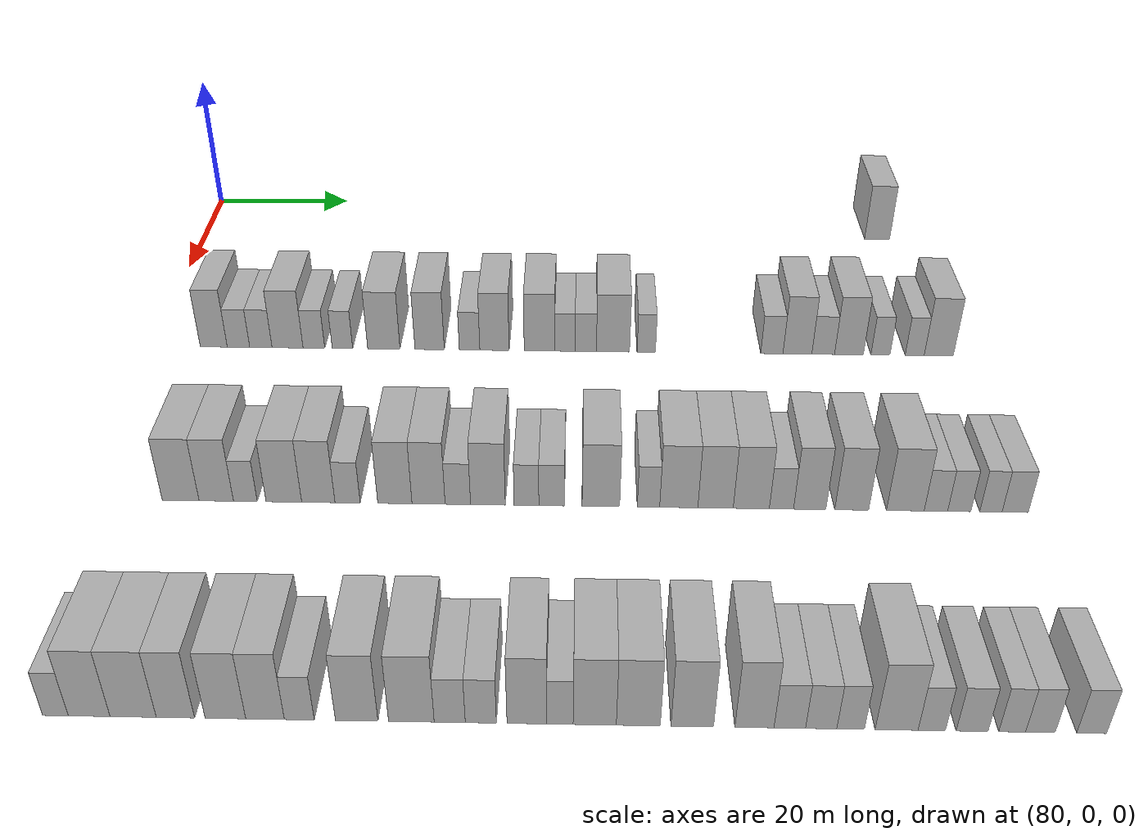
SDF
<sdf version="1.6">
 <world name="default">
  <model name="building_582">
   <static>1</static>
   <pose>85.0000 101.9028 0 0.000000 0.000000 0.000000</pose>
   <link name="link">
    <pose>0 0 4.50 0 0 0</pose>
    <collision name="collision"><geometry><box><size>10.0000 3.7658 9.0000</size></box></geometry></collision>
    <visual name="visual">
     <cast_shadows>0</cast_shadows>
     <geometry><box><size>10.0000 3.7658 9.0000</size></box></geometry>
     <material>
      <script>
       <uri>model://HANNAS_wall/materials/scripts</uri>
       <uri>model://HANNAS_wall/materials/textures</uri>
       <name>vrc/HANNAS_wall</name>
      </script>
     </material>
    </visual>
   </link>
  </model>
  <model name="building_786">
   <static>1</static>
   <pose>115.0000 8.3371 0 0.000000 0.000000 0.000000</pose>
   <link name="link">
    <pose>0 0 4.50 0 0 0</pose>
    <collision name="collision"><geometry><box><size>10.0000 3.6056 9.0000</size></box></geometry></collision>
    <visual name="visual">
     <cast_shadows>0</cast_shadows>
     <geometry><box><size>10.0000 3.6056 9.0000</size></box></geometry>
     <material>
      <script>
       <uri>model://HANNAS_wall/materials/scripts</uri>
       <uri>model://HANNAS_wall/materials/textures</uri>
       <name>vrc/HANNAS_wall</name>
      </script>
     </material>
    </visual>
   </link>
  </model>
  <model name="building_787">
   <static>1</static>
   <pose>115.0000 11.6390 0 0.000000 0.000000 0.000000</pose>
   <link name="link">
    <pose>0 0 3.00 0 0 0</pose>
    <collision name="collision"><geometry><box><size>10.0000 2.9984 6.0000</size></box></geometry></collision>
    <visual name="visual">
     <cast_shadows>0</cast_shadows>
     <geometry><box><size>10.0000 2.9984 6.0000</size></box></geometry>
     <material>
      <script>
       <uri>model://HANNAS_wall/materials/scripts</uri>
       <uri>model://HANNAS_wall/materials/textures</uri>
       <name>vrc/HANNAS_wall</name>
      </script>
     </material>
    </visual>
   </link>
  </model>
  <model name="building_788">
   <static>1</static>
   <pose>115.0000 14.6338 0 0.000000 0.000000 0.000000</pose>
   <link name="link">
    <pose>0 0 3.00 0 0 0</pose>
    <collision name="collision"><geometry><box><size>10.0000 2.9912 6.0000</size></box></geometry></collision>
    <visual name="visual">
     <cast_shadows>0</cast_shadows>
     <geometry><box><size>10.0000 2.9912 6.0000</size></box></geometry>
     <material>
      <script>
       <uri>model://HANNAS_wall/materials/scripts</uri>
       <uri>model://HANNAS_wall/materials/textures</uri>
       <name>vrc/HANNAS_wall</name>
      </script>
     </material>
    </visual>
   </link>
  </model>
  <model name="building_789">
   <static>1</static>
   <pose>115.0000 18.2004 0 0.000000 0.000000 0.000000</pose>
   <link name="link">
    <pose>0 0 4.50 0 0 0</pose>
    <collision name="collision"><geometry><box><size>10.0000 4.1419 9.0000</size></box></geometry></collision>
    <visual name="visual">
     <cast_shadows>0</cast_shadows>
     <geometry><box><size>10.0000 4.1419 9.0000</size></box></geometry>
     <material>
      <script>
       <uri>model://HANNAS_wall/materials/scripts</uri>
       <uri>model://HANNAS_wall/materials/textures</uri>
       <name>vrc/HANNAS_wall</name>
      </script>
     </material>
    </visual>
   </link>
  </model>
  <model name="building_790">
   <static>1</static>
   <pose>115.0000 21.7192 0 0.000000 0.000000 0.000000</pose>
   <link name="link">
    <pose>0 0 3.00 0 0 0</pose>
    <collision name="collision"><geometry><box><size>10.0000 2.8958 6.0000</size></box></geometry></collision>
    <visual name="visual">
     <cast_shadows>0</cast_shadows>
     <geometry><box><size>10.0000 2.8958 6.0000</size></box></geometry>
     <material>
      <script>
       <uri>model://HANNAS_wall/materials/scripts</uri>
       <uri>model://HANNAS_wall/materials/textures</uri>
       <name>vrc/HANNAS_wall</name>
      </script>
     </material>
    </visual>
   </link>
  </model>
  <model name="building_791">
   <static>1</static>
   <pose>115.0000 25.5296 0 0.000000 0.000000 0.000000</pose>
   <link name="link">
    <pose>0 0 3.00 0 0 0</pose>
    <collision name="collision"><geometry><box><size>10.0000 2.7250 6.0000</size></box></geometry></collision>
    <visual name="visual">
     <cast_shadows>0</cast_shadows>
     <geometry><box><size>10.0000 2.7250 6.0000</size></box></geometry>
     <material>
      <script>
       <uri>model://HANNAS_wall/materials/scripts</uri>
       <uri>model://HANNAS_wall/materials/textures</uri>
       <name>vrc/HANNAS_wall</name>
      </script>
     </material>
    </visual>
   </link>
  </model>
  <model name="building_792">
   <static>1</static>
   <pose>115.0000 31.0427 0 0.000000 0.000000 0.000000</pose>
   <link name="link">
    <pose>0 0 4.50 0 0 0</pose>
    <collision name="collision"><geometry><box><size>10.0000 4.3012 9.0000</size></box></geometry></collision>
    <visual name="visual">
     <cast_shadows>0</cast_shadows>
     <geometry><box><size>10.0000 4.3012 9.0000</size></box></geometry>
     <material>
      <script>
       <uri>model://HANNAS_wall/materials/scripts</uri>
       <uri>model://HANNAS_wall/materials/textures</uri>
       <name>vrc/HANNAS_wall</name>
      </script>
     </material>
    </visual>
   </link>
  </model>
  <model name="building_793">
   <static>1</static>
   <pose>115.0000 37.1422 0 0.000000 0.000000 0.000000</pose>
   <link name="link">
    <pose>0 0 4.50 0 0 0</pose>
    <collision name="collision"><geometry><box><size>10.0000 3.8977 9.0000</size></box></geometry></collision>
    <visual name="visual">
     <cast_shadows>0</cast_shadows>
     <geometry><box><size>10.0000 3.8977 9.0000</size></box></geometry>
     <material>
      <script>
       <uri>model://HANNAS_wall/materials/scripts</uri>
       <uri>model://HANNAS_wall/materials/textures</uri>
       <name>vrc/HANNAS_wall</name>
      </script>
     </material>
    </visual>
   </link>
  </model>
  <model name="building_794">
   <static>1</static>
   <pose>115.0000 42.4540 0 0.000000 0.000000 0.000000</pose>
   <link name="link">
    <pose>0 0 3.00 0 0 0</pose>
    <collision name="collision"><geometry><box><size>10.0000 2.7260 6.0000</size></box></geometry></collision>
    <visual name="visual">
     <cast_shadows>0</cast_shadows>
     <geometry><box><size>10.0000 2.7260 6.0000</size></box></geometry>
     <material>
      <script>
       <uri>model://HANNAS_wall/materials/scripts</uri>
       <uri>model://HANNAS_wall/materials/textures</uri>
       <name>vrc/HANNAS_wall</name>
      </script>
     </material>
    </visual>
   </link>
  </model>
  <model name="building_795">
   <static>1</static>
   <pose>115.0000 45.7626 0 0.000000 0.000000 0.000000</pose>
   <link name="link">
    <pose>0 0 4.50 0 0 0</pose>
    <collision name="collision"><geometry><box><size>10.0000 3.8911 9.0000</size></box></geometry></collision>
    <visual name="visual">
     <cast_shadows>0</cast_shadows>
     <geometry><box><size>10.0000 3.8911 9.0000</size></box></geometry>
     <material>
      <script>
       <uri>model://HANNAS_wall/materials/scripts</uri>
       <uri>model://HANNAS_wall/materials/textures</uri>
       <name>vrc/HANNAS_wall</name>
      </script>
     </material>
    </visual>
   </link>
  </model>
  <model name="building_796">
   <static>1</static>
   <pose>115.0000 51.7345 0 0.000000 0.000000 0.000000</pose>
   <link name="link">
    <pose>0 0 4.50 0 0 0</pose>
    <collision name="collision"><geometry><box><size>10.0000 4.0527 9.0000</size></box></geometry></collision>
    <visual name="visual">
     <cast_shadows>0</cast_shadows>
     <geometry><box><size>10.0000 4.0527 9.0000</size></box></geometry>
     <material>
      <script>
       <uri>model://HANNAS_wall/materials/scripts</uri>
       <uri>model://HANNAS_wall/materials/textures</uri>
       <name>vrc/HANNAS_wall</name>
      </script>
     </material>
    </visual>
   </link>
  </model>
  <model name="building_797">
   <static>1</static>
   <pose>115.0000 55.1009 0 0.000000 0.000000 0.000000</pose>
   <link name="link">
    <pose>0 0 3.00 0 0 0</pose>
    <collision name="collision"><geometry><box><size>10.0000 2.6801 6.0000</size></box></geometry></collision>
    <visual name="visual">
     <cast_shadows>0</cast_shadows>
     <geometry><box><size>10.0000 2.6801 6.0000</size></box></geometry>
     <material>
      <script>
       <uri>model://HANNAS_wall/materials/scripts</uri>
       <uri>model://HANNAS_wall/materials/textures</uri>
       <name>vrc/HANNAS_wall</name>
      </script>
     </material>
    </visual>
   </link>
  </model>
  <model name="building_798">
   <static>1</static>
   <pose>115.0000 57.8525 0 0.000000 0.000000 0.000000</pose>
   <link name="link">
    <pose>0 0 3.00 0 0 0</pose>
    <collision name="collision"><geometry><box><size>10.0000 2.8230 6.0000</size></box></geometry></collision>
    <visual name="visual">
     <cast_shadows>0</cast_shadows>
     <geometry><box><size>10.0000 2.8230 6.0000</size></box></geometry>
     <material>
      <script>
       <uri>model://HANNAS_wall/materials/scripts</uri>
       <uri>model://HANNAS_wall/materials/textures</uri>
       <name>vrc/HANNAS_wall</name>
      </script>
     </material>
    </visual>
   </link>
  </model>
  <model name="building_799">
   <static>1</static>
   <pose>115.0000 61.4612 0 0.000000 0.000000 0.000000</pose>
   <link name="link">
    <pose>0 0 4.50 0 0 0</pose>
    <collision name="collision"><geometry><box><size>10.0000 4.3944 9.0000</size></box></geometry></collision>
    <visual name="visual">
     <cast_shadows>0</cast_shadows>
     <geometry><box><size>10.0000 4.3944 9.0000</size></box></geometry>
     <material>
      <script>
       <uri>model://HANNAS_wall/materials/scripts</uri>
       <uri>model://HANNAS_wall/materials/textures</uri>
       <name>vrc/HANNAS_wall</name>
      </script>
     </material>
    </visual>
   </link>
  </model>
  <model name="building_800">
   <static>1</static>
   <pose>115.0000 65.8676 0 0.000000 0.000000 0.000000</pose>
   <link name="link">
    <pose>0 0 3.00 0 0 0</pose>
    <collision name="collision"><geometry><box><size>10.0000 2.4184 6.0000</size></box></geometry></collision>
    <visual name="visual">
     <cast_shadows>0</cast_shadows>
     <geometry><box><size>10.0000 2.4184 6.0000</size></box></geometry>
     <material>
      <script>
       <uri>model://HANNAS_wall/materials/scripts</uri>
       <uri>model://HANNAS_wall/materials/textures</uri>
       <name>vrc/HANNAS_wall</name>
      </script>
     </material>
    </visual>
   </link>
  </model>
  <model name="building_801">
   <static>1</static>
   <pose>115.0000 82.4691 0 0.000000 0.000000 0.000000</pose>
   <link name="link">
    <pose>0 0 3.00 0 0 0</pose>
    <collision name="collision"><geometry><box><size>10.0000 2.9282 6.0000</size></box></geometry></collision>
    <visual name="visual">
     <cast_shadows>0</cast_shadows>
     <geometry><box><size>10.0000 2.9282 6.0000</size></box></geometry>
     <material>
      <script>
       <uri>model://HANNAS_wall/materials/scripts</uri>
       <uri>model://HANNAS_wall/materials/textures</uri>
       <name>vrc/HANNAS_wall</name>
      </script>
     </material>
    </visual>
   </link>
  </model>
  <model name="building_802">
   <static>1</static>
   <pose>115.0000 85.8316 0 0.000000 0.000000 0.000000</pose>
   <link name="link">
    <pose>0 0 4.50 0 0 0</pose>
    <collision name="collision"><geometry><box><size>10.0000 3.7968 9.0000</size></box></geometry></collision>
    <visual name="visual">
     <cast_shadows>0</cast_shadows>
     <geometry><box><size>10.0000 3.7968 9.0000</size></box></geometry>
     <material>
      <script>
       <uri>model://HANNAS_wall/materials/scripts</uri>
       <uri>model://HANNAS_wall/materials/textures</uri>
       <name>vrc/HANNAS_wall</name>
      </script>
     </material>
    </visual>
   </link>
  </model>
  <model name="building_803">
   <static>1</static>
   <pose>115.0000 89.2266 0 0.000000 0.000000 0.000000</pose>
   <link name="link">
    <pose>0 0 3.00 0 0 0</pose>
    <collision name="collision"><geometry><box><size>10.0000 2.9931 6.0000</size></box></geometry></collision>
    <visual name="visual">
     <cast_shadows>0</cast_shadows>
     <geometry><box><size>10.0000 2.9931 6.0000</size></box></geometry>
     <material>
      <script>
       <uri>model://HANNAS_wall/materials/scripts</uri>
       <uri>model://HANNAS_wall/materials/textures</uri>
       <name>vrc/HANNAS_wall</name>
      </script>
     </material>
    </visual>
   </link>
  </model>
  <model name="building_804">
   <static>1</static>
   <pose>115.0000 92.6166 0 0.000000 0.000000 0.000000</pose>
   <link name="link">
    <pose>0 0 4.50 0 0 0</pose>
    <collision name="collision"><geometry><box><size>10.0000 3.7870 9.0000</size></box></geometry></collision>
    <visual name="visual">
     <cast_shadows>0</cast_shadows>
     <geometry><box><size>10.0000 3.7870 9.0000</size></box></geometry>
     <material>
      <script>
       <uri>model://HANNAS_wall/materials/scripts</uri>
       <uri>model://HANNAS_wall/materials/textures</uri>
       <name>vrc/HANNAS_wall</name>
      </script>
     </material>
    </visual>
   </link>
  </model>
  <model name="building_805">
   <static>1</static>
   <pose>115.0000 96.7622 0 0.000000 0.000000 0.000000</pose>
   <link name="link">
    <pose>0 0 3.00 0 0 0</pose>
    <collision name="collision"><geometry><box><size>10.0000 2.5042 6.0000</size></box></geometry></collision>
    <visual name="visual">
     <cast_shadows>0</cast_shadows>
     <geometry><box><size>10.0000 2.5042 6.0000</size></box></geometry>
     <material>
      <script>
       <uri>model://HANNAS_wall/materials/scripts</uri>
       <uri>model://HANNAS_wall/materials/textures</uri>
       <name>vrc/HANNAS_wall</name>
      </script>
     </material>
    </visual>
   </link>
  </model>
  <model name="building_806">
   <static>1</static>
   <pose>115.0000 101.2662 0 0.000000 0.000000 0.000000</pose>
   <link name="link">
    <pose>0 0 3.00 0 0 0</pose>
    <collision name="collision"><geometry><box><size>10.0000 2.5036 6.0000</size></box></geometry></collision>
    <visual name="visual">
     <cast_shadows>0</cast_shadows>
     <geometry><box><size>10.0000 2.5036 6.0000</size></box></geometry>
     <material>
      <script>
       <uri>model://HANNAS_wall/materials/scripts</uri>
       <uri>model://HANNAS_wall/materials/textures</uri>
       <name>vrc/HANNAS_wall</name>
      </script>
     </material>
    </visual>
   </link>
  </model>
  <model name="building_807">
   <static>1</static>
   <pose>115.0000 104.4235 0 0.000000 0.000000 0.000000</pose>
   <link name="link">
    <pose>0 0 4.50 0 0 0</pose>
    <collision name="collision"><geometry><box><size>10.0000 3.8110 9.0000</size></box></geometry></collision>
    <visual name="visual">
     <cast_shadows>0</cast_shadows>
     <geometry><box><size>10.0000 3.8110 9.0000</size></box></geometry>
     <material>
      <script>
       <uri>model://HANNAS_wall/materials/scripts</uri>
       <uri>model://HANNAS_wall/materials/textures</uri>
       <name>vrc/HANNAS_wall</name>
      </script>
     </material>
    </visual>
   </link>
  </model>
  <model name="building_1008">
   <static>1</static>
   <pose>145.0000 11.7958 0 0.000000 0.000000 0.000000</pose>
   <link name="link">
    <pose>0 0 4.50 0 0 0</pose>
    <collision name="collision"><geometry><box><size>10.0000 4.2122 9.0000</size></box></geometry></collision>
    <visual name="visual">
     <cast_shadows>0</cast_shadows>
     <geometry><box><size>10.0000 4.2122 9.0000</size></box></geometry>
     <material>
      <script>
       <uri>model://HANNAS_wall/materials/scripts</uri>
       <uri>model://HANNAS_wall/materials/textures</uri>
       <name>vrc/HANNAS_wall</name>
      </script>
     </material>
    </visual>
   </link>
  </model>
  <model name="building_1009">
   <static>1</static>
   <pose>145.0000 15.8680 0 0.000000 0.000000 0.000000</pose>
   <link name="link">
    <pose>0 0 4.50 0 0 0</pose>
    <collision name="collision"><geometry><box><size>10.0000 3.9323 9.0000</size></box></geometry></collision>
    <visual name="visual">
     <cast_shadows>0</cast_shadows>
     <geometry><box><size>10.0000 3.9323 9.0000</size></box></geometry>
     <material>
      <script>
       <uri>model://HANNAS_wall/materials/scripts</uri>
       <uri>model://HANNAS_wall/materials/textures</uri>
       <name>vrc/HANNAS_wall</name>
      </script>
     </material>
    </visual>
   </link>
  </model>
  <model name="building_1010">
   <static>1</static>
   <pose>145.0000 19.1947 0 0.000000 0.000000 0.000000</pose>
   <link name="link">
    <pose>0 0 3.00 0 0 0</pose>
    <collision name="collision"><geometry><box><size>10.0000 2.7211 6.0000</size></box></geometry></collision>
    <visual name="visual">
     <cast_shadows>0</cast_shadows>
     <geometry><box><size>10.0000 2.7211 6.0000</size></box></geometry>
     <material>
      <script>
       <uri>model://HANNAS_wall/materials/scripts</uri>
       <uri>model://HANNAS_wall/materials/textures</uri>
       <name>vrc/HANNAS_wall</name>
      </script>
     </material>
    </visual>
   </link>
  </model>
  <model name="building_1011">
   <static>1</static>
   <pose>145.0000 23.5867 0 0.000000 0.000000 0.000000</pose>
   <link name="link">
    <pose>0 0 4.50 0 0 0</pose>
    <collision name="collision"><geometry><box><size>10.0000 4.0630 9.0000</size></box></geometry></collision>
    <visual name="visual">
     <cast_shadows>0</cast_shadows>
     <geometry><box><size>10.0000 4.0630 9.0000</size></box></geometry>
     <material>
      <script>
       <uri>model://HANNAS_wall/materials/scripts</uri>
       <uri>model://HANNAS_wall/materials/textures</uri>
       <name>vrc/HANNAS_wall</name>
      </script>
     </material>
    </visual>
   </link>
  </model>
  <model name="building_1012">
   <static>1</static>
   <pose>145.0000 27.5180 0 0.000000 0.000000 0.000000</pose>
   <link name="link">
    <pose>0 0 4.50 0 0 0</pose>
    <collision name="collision"><geometry><box><size>10.0000 3.7995 9.0000</size></box></geometry></collision>
    <visual name="visual">
     <cast_shadows>0</cast_shadows>
     <geometry><box><size>10.0000 3.7995 9.0000</size></box></geometry>
     <material>
      <script>
       <uri>model://HANNAS_wall/materials/scripts</uri>
       <uri>model://HANNAS_wall/materials/textures</uri>
       <name>vrc/HANNAS_wall</name>
      </script>
     </material>
    </visual>
   </link>
  </model>
  <model name="building_1013">
   <static>1</static>
   <pose>145.0000 30.8530 0 0.000000 0.000000 0.000000</pose>
   <link name="link">
    <pose>0 0 3.00 0 0 0</pose>
    <collision name="collision"><geometry><box><size>10.0000 2.8705 6.0000</size></box></geometry></collision>
    <visual name="visual">
     <cast_shadows>0</cast_shadows>
     <geometry><box><size>10.0000 2.8705 6.0000</size></box></geometry>
     <material>
      <script>
       <uri>model://HANNAS_wall/materials/scripts</uri>
       <uri>model://HANNAS_wall/materials/textures</uri>
       <name>vrc/HANNAS_wall</name>
      </script>
     </material>
    </visual>
   </link>
  </model>
  <model name="building_1014">
   <static>1</static>
   <pose>145.0000 36.2369 0 0.000000 0.000000 0.000000</pose>
   <link name="link">
    <pose>0 0 4.50 0 0 0</pose>
    <collision name="collision"><geometry><box><size>10.0000 3.8973 9.0000</size></box></geometry></collision>
    <visual name="visual">
     <cast_shadows>0</cast_shadows>
     <geometry><box><size>10.0000 3.8973 9.0000</size></box></geometry>
     <material>
      <script>
       <uri>model://HANNAS_wall/materials/scripts</uri>
       <uri>model://HANNAS_wall/materials/textures</uri>
       <name>vrc/HANNAS_wall</name>
      </script>
     </material>
    </visual>
   </link>
  </model>
  <model name="building_1015">
   <static>1</static>
   <pose>145.0000 40.0674 0 0.000000 0.000000 0.000000</pose>
   <link name="link">
    <pose>0 0 4.50 0 0 0</pose>
    <collision name="collision"><geometry><box><size>10.0000 3.7638 9.0000</size></box></geometry></collision>
    <visual name="visual">
     <cast_shadows>0</cast_shadows>
     <geometry><box><size>10.0000 3.7638 9.0000</size></box></geometry>
     <material>
      <script>
       <uri>model://HANNAS_wall/materials/scripts</uri>
       <uri>model://HANNAS_wall/materials/textures</uri>
       <name>vrc/HANNAS_wall</name>
      </script>
     </material>
    </visual>
   </link>
  </model>
  <model name="building_1016">
   <static>1</static>
   <pose>145.0000 43.3934 0 0.000000 0.000000 0.000000</pose>
   <link name="link">
    <pose>0 0 3.00 0 0 0</pose>
    <collision name="collision"><geometry><box><size>10.0000 2.8883 6.0000</size></box></geometry></collision>
    <visual name="visual">
     <cast_shadows>0</cast_shadows>
     <geometry><box><size>10.0000 2.8883 6.0000</size></box></geometry>
     <material>
      <script>
       <uri>model://HANNAS_wall/materials/scripts</uri>
       <uri>model://HANNAS_wall/materials/textures</uri>
       <name>vrc/HANNAS_wall</name>
      </script>
     </material>
    </visual>
   </link>
  </model>
  <model name="building_1017">
   <static>1</static>
   <pose>145.0000 46.8110 0 0.000000 0.000000 0.000000</pose>
   <link name="link">
    <pose>0 0 4.50 0 0 0</pose>
    <collision name="collision"><geometry><box><size>10.0000 3.9469 9.0000</size></box></geometry></collision>
    <visual name="visual">
     <cast_shadows>0</cast_shadows>
     <geometry><box><size>10.0000 3.9469 9.0000</size></box></geometry>
     <material>
      <script>
       <uri>model://HANNAS_wall/materials/scripts</uri>
       <uri>model://HANNAS_wall/materials/textures</uri>
       <name>vrc/HANNAS_wall</name>
      </script>
     </material>
    </visual>
   </link>
  </model>
  <model name="building_1018">
   <static>1</static>
   <pose>145.0000 51.1833 0 0.000000 0.000000 0.000000</pose>
   <link name="link">
    <pose>0 0 3.00 0 0 0</pose>
    <collision name="collision"><geometry><box><size>10.0000 2.7978 6.0000</size></box></geometry></collision>
    <visual name="visual">
     <cast_shadows>0</cast_shadows>
     <geometry><box><size>10.0000 2.7978 6.0000</size></box></geometry>
     <material>
      <script>
       <uri>model://HANNAS_wall/materials/scripts</uri>
       <uri>model://HANNAS_wall/materials/textures</uri>
       <name>vrc/HANNAS_wall</name>
      </script>
     </material>
    </visual>
   </link>
  </model>
  <model name="building_1019">
   <static>1</static>
   <pose>145.0000 54.0289 0 0.000000 0.000000 0.000000</pose>
   <link name="link">
    <pose>0 0 3.00 0 0 0</pose>
    <collision name="collision"><geometry><box><size>10.0000 2.8934 6.0000</size></box></geometry></collision>
    <visual name="visual">
     <cast_shadows>0</cast_shadows>
     <geometry><box><size>10.0000 2.8934 6.0000</size></box></geometry>
     <material>
      <script>
       <uri>model://HANNAS_wall/materials/scripts</uri>
       <uri>model://HANNAS_wall/materials/textures</uri>
       <name>vrc/HANNAS_wall</name>
      </script>
     </material>
    </visual>
   </link>
  </model>
  <model name="building_1020">
   <static>1</static>
   <pose>145.0000 59.5996 0 0.000000 0.000000 0.000000</pose>
   <link name="link">
    <pose>0 0 4.50 0 0 0</pose>
    <collision name="collision"><geometry><box><size>10.0000 4.2478 9.0000</size></box></geometry></collision>
    <visual name="visual">
     <cast_shadows>0</cast_shadows>
     <geometry><box><size>10.0000 4.2478 9.0000</size></box></geometry>
     <material>
      <script>
       <uri>model://HANNAS_wall/materials/scripts</uri>
       <uri>model://HANNAS_wall/materials/textures</uri>
       <name>vrc/HANNAS_wall</name>
      </script>
     </material>
    </visual>
   </link>
  </model>
  <model name="building_1021">
   <static>1</static>
   <pose>145.0000 64.9868 0 0.000000 0.000000 0.000000</pose>
   <link name="link">
    <pose>0 0 3.00 0 0 0</pose>
    <collision name="collision"><geometry><box><size>10.0000 2.5267 6.0000</size></box></geometry></collision>
    <visual name="visual">
     <cast_shadows>0</cast_shadows>
     <geometry><box><size>10.0000 2.5267 6.0000</size></box></geometry>
     <material>
      <script>
       <uri>model://HANNAS_wall/materials/scripts</uri>
       <uri>model://HANNAS_wall/materials/textures</uri>
       <name>vrc/HANNAS_wall</name>
      </script>
     </material>
    </visual>
   </link>
  </model>
  <model name="building_1022">
   <static>1</static>
   <pose>145.0000 68.4050 0 0.000000 0.000000 0.000000</pose>
   <link name="link">
    <pose>0 0 4.50 0 0 0</pose>
    <collision name="collision"><geometry><box><size>10.0000 4.3097 9.0000</size></box></geometry></collision>
    <visual name="visual">
     <cast_shadows>0</cast_shadows>
     <geometry><box><size>10.0000 4.3097 9.0000</size></box></geometry>
     <material>
      <script>
       <uri>model://HANNAS_wall/materials/scripts</uri>
       <uri>model://HANNAS_wall/materials/textures</uri>
       <name>vrc/HANNAS_wall</name>
      </script>
     </material>
    </visual>
   </link>
  </model>
  <model name="building_1023">
   <static>1</static>
   <pose>145.0000 72.5558 0 0.000000 0.000000 0.000000</pose>
   <link name="link">
    <pose>0 0 4.50 0 0 0</pose>
    <collision name="collision"><geometry><box><size>10.0000 3.9921 9.0000</size></box></geometry></collision>
    <visual name="visual">
     <cast_shadows>0</cast_shadows>
     <geometry><box><size>10.0000 3.9921 9.0000</size></box></geometry>
     <material>
      <script>
       <uri>model://HANNAS_wall/materials/scripts</uri>
       <uri>model://HANNAS_wall/materials/textures</uri>
       <name>vrc/HANNAS_wall</name>
      </script>
     </material>
    </visual>
   </link>
  </model>
  <model name="building_1024">
   <static>1</static>
   <pose>145.0000 76.5869 0 0.000000 0.000000 0.000000</pose>
   <link name="link">
    <pose>0 0 4.50 0 0 0</pose>
    <collision name="collision"><geometry><box><size>10.0000 4.0700 9.0000</size></box></geometry></collision>
    <visual name="visual">
     <cast_shadows>0</cast_shadows>
     <geometry><box><size>10.0000 4.0700 9.0000</size></box></geometry>
     <material>
      <script>
       <uri>model://HANNAS_wall/materials/scripts</uri>
       <uri>model://HANNAS_wall/materials/textures</uri>
       <name>vrc/HANNAS_wall</name>
      </script>
     </material>
    </visual>
   </link>
  </model>
  <model name="building_1025">
   <static>1</static>
   <pose>145.0000 79.9825 0 0.000000 0.000000 0.000000</pose>
   <link name="link">
    <pose>0 0 3.00 0 0 0</pose>
    <collision name="collision"><geometry><box><size>10.0000 2.7213 6.0000</size></box></geometry></collision>
    <visual name="visual">
     <cast_shadows>0</cast_shadows>
     <geometry><box><size>10.0000 2.7213 6.0000</size></box></geometry>
     <material>
      <script>
       <uri>model://HANNAS_wall/materials/scripts</uri>
       <uri>model://HANNAS_wall/materials/textures</uri>
       <name>vrc/HANNAS_wall</name>
      </script>
     </material>
    </visual>
   </link>
  </model>
  <model name="building_1026">
   <static>1</static>
   <pose>145.0000 83.1626 0 0.000000 0.000000 0.000000</pose>
   <link name="link">
    <pose>0 0 4.50 0 0 0</pose>
    <collision name="collision"><geometry><box><size>10.0000 3.6389 9.0000</size></box></geometry></collision>
    <visual name="visual">
     <cast_shadows>0</cast_shadows>
     <geometry><box><size>10.0000 3.6389 9.0000</size></box></geometry>
     <material>
      <script>
       <uri>model://HANNAS_wall/materials/scripts</uri>
       <uri>model://HANNAS_wall/materials/textures</uri>
       <name>vrc/HANNAS_wall</name>
      </script>
     </material>
    </visual>
   </link>
  </model>
  <model name="building_1027">
   <static>1</static>
   <pose>145.0000 87.8888 0 0.000000 0.000000 0.000000</pose>
   <link name="link">
    <pose>0 0 4.50 0 0 0</pose>
    <collision name="collision"><geometry><box><size>10.0000 3.8135 9.0000</size></box></geometry></collision>
    <visual name="visual">
     <cast_shadows>0</cast_shadows>
     <geometry><box><size>10.0000 3.8135 9.0000</size></box></geometry>
     <material>
      <script>
       <uri>model://HANNAS_wall/materials/scripts</uri>
       <uri>model://HANNAS_wall/materials/textures</uri>
       <name>vrc/HANNAS_wall</name>
      </script>
     </material>
    </visual>
   </link>
  </model>
  <model name="building_1028">
   <static>1</static>
   <pose>145.0000 93.9106 0 0.000000 0.000000 0.000000</pose>
   <link name="link">
    <pose>0 0 4.50 0 0 0</pose>
    <collision name="collision"><geometry><box><size>10.0000 4.2302 9.0000</size></box></geometry></collision>
    <visual name="visual">
     <cast_shadows>0</cast_shadows>
     <geometry><box><size>10.0000 4.2302 9.0000</size></box></geometry>
     <material>
      <script>
       <uri>model://HANNAS_wall/materials/scripts</uri>
       <uri>model://HANNAS_wall/materials/textures</uri>
       <name>vrc/HANNAS_wall</name>
      </script>
     </material>
    </visual>
   </link>
  </model>
  <model name="building_1029">
   <static>1</static>
   <pose>145.0000 97.3441 0 0.000000 0.000000 0.000000</pose>
   <link name="link">
    <pose>0 0 3.00 0 0 0</pose>
    <collision name="collision"><geometry><box><size>10.0000 2.6367 6.0000</size></box></geometry></collision>
    <visual name="visual">
     <cast_shadows>0</cast_shadows>
     <geometry><box><size>10.0000 2.6367 6.0000</size></box></geometry>
     <material>
      <script>
       <uri>model://HANNAS_wall/materials/scripts</uri>
       <uri>model://HANNAS_wall/materials/textures</uri>
       <name>vrc/HANNAS_wall</name>
      </script>
     </material>
    </visual>
   </link>
  </model>
  <model name="building_1030">
   <static>1</static>
   <pose>145.0000 99.9662 0 0.000000 0.000000 0.000000</pose>
   <link name="link">
    <pose>0 0 3.00 0 0 0</pose>
    <collision name="collision"><geometry><box><size>10.0000 2.6075 6.0000</size></box></geometry></collision>
    <visual name="visual">
     <cast_shadows>0</cast_shadows>
     <geometry><box><size>10.0000 2.6075 6.0000</size></box></geometry>
     <material>
      <script>
       <uri>model://HANNAS_wall/materials/scripts</uri>
       <uri>model://HANNAS_wall/materials/textures</uri>
       <name>vrc/HANNAS_wall</name>
      </script>
     </material>
    </visual>
   </link>
  </model>
  <model name="building_1031">
   <static>1</static>
   <pose>145.0000 103.5165 0 0.000000 0.000000 0.000000</pose>
   <link name="link">
    <pose>0 0 3.00 0 0 0</pose>
    <collision name="collision"><geometry><box><size>10.0000 2.4932 6.0000</size></box></geometry></collision>
    <visual name="visual">
     <cast_shadows>0</cast_shadows>
     <geometry><box><size>10.0000 2.4932 6.0000</size></box></geometry>
     <material>
      <script>
       <uri>model://HANNAS_wall/materials/scripts</uri>
       <uri>model://HANNAS_wall/materials/textures</uri>
       <name>vrc/HANNAS_wall</name>
      </script>
     </material>
    </visual>
   </link>
  </model>
  <model name="building_1032">
   <static>1</static>
   <pose>145.0000 106.2282 0 0.000000 0.000000 0.000000</pose>
   <link name="link">
    <pose>0 0 3.00 0 0 0</pose>
    <collision name="collision"><geometry><box><size>10.0000 2.9302 6.0000</size></box></geometry></collision>
    <visual name="visual">
     <cast_shadows>0</cast_shadows>
     <geometry><box><size>10.0000 2.9302 6.0000</size></box></geometry>
     <material>
      <script>
       <uri>model://HANNAS_wall/materials/scripts</uri>
       <uri>model://HANNAS_wall/materials/textures</uri>
       <name>vrc/HANNAS_wall</name>
      </script>
     </material>
    </visual>
   </link>
  </model>
  <model name="building_1233">
   <static>1</static>
   <pose>175.0000 7.7934 0 0.000000 0.000000 0.000000</pose>
   <link name="link">
    <pose>0 0 3.00 0 0 0</pose>
    <collision name="collision"><geometry><box><size>10.0000 2.4378 6.0000</size></box></geometry></collision>
    <visual name="visual">
     <cast_shadows>0</cast_shadows>
     <geometry><box><size>10.0000 2.4378 6.0000</size></box></geometry>
     <material>
      <script>
       <uri>model://HANNAS_wall/materials/scripts</uri>
       <uri>model://HANNAS_wall/materials/textures</uri>
       <name>vrc/HANNAS_wall</name>
      </script>
     </material>
    </visual>
   </link>
  </model>
  <model name="building_1234">
   <static>1</static>
   <pose>175.0000 10.9963 0 0.000000 0.000000 0.000000</pose>
   <link name="link">
    <pose>0 0 4.50 0 0 0</pose>
    <collision name="collision"><geometry><box><size>10.0000 3.9681 9.0000</size></box></geometry></collision>
    <visual name="visual">
     <cast_shadows>0</cast_shadows>
     <geometry><box><size>10.0000 3.9681 9.0000</size></box></geometry>
     <material>
      <script>
       <uri>model://HANNAS_wall/materials/scripts</uri>
       <uri>model://HANNAS_wall/materials/textures</uri>
       <name>vrc/HANNAS_wall</name>
      </script>
     </material>
    </visual>
   </link>
  </model>
  <model name="building_1235">
   <static>1</static>
   <pose>175.0000 15.1767 0 0.000000 0.000000 0.000000</pose>
   <link name="link">
    <pose>0 0 4.50 0 0 0</pose>
    <collision name="collision"><geometry><box><size>10.0000 4.3926 9.0000</size></box></geometry></collision>
    <visual name="visual">
     <cast_shadows>0</cast_shadows>
     <geometry><box><size>10.0000 4.3926 9.0000</size></box></geometry>
     <material>
      <script>
       <uri>model://HANNAS_wall/materials/scripts</uri>
       <uri>model://HANNAS_wall/materials/textures</uri>
       <name>vrc/HANNAS_wall</name>
      </script>
     </material>
    </visual>
   </link>
  </model>
  <model name="building_1236">
   <static>1</static>
   <pose>175.0000 19.1939 0 0.000000 0.000000 0.000000</pose>
   <link name="link">
    <pose>0 0 4.50 0 0 0</pose>
    <collision name="collision"><geometry><box><size>10.0000 3.6418 9.0000</size></box></geometry></collision>
    <visual name="visual">
     <cast_shadows>0</cast_shadows>
     <geometry><box><size>10.0000 3.6418 9.0000</size></box></geometry>
     <material>
      <script>
       <uri>model://HANNAS_wall/materials/scripts</uri>
       <uri>model://HANNAS_wall/materials/textures</uri>
       <name>vrc/HANNAS_wall</name>
      </script>
     </material>
    </visual>
   </link>
  </model>
  <model name="building_1237">
   <static>1</static>
   <pose>175.0000 23.9376 0 0.000000 0.000000 0.000000</pose>
   <link name="link">
    <pose>0 0 4.50 0 0 0</pose>
    <collision name="collision"><geometry><box><size>10.0000 3.8456 9.0000</size></box></geometry></collision>
    <visual name="visual">
     <cast_shadows>0</cast_shadows>
     <geometry><box><size>10.0000 3.8456 9.0000</size></box></geometry>
     <material>
      <script>
       <uri>model://HANNAS_wall/materials/scripts</uri>
       <uri>model://HANNAS_wall/materials/textures</uri>
       <name>vrc/HANNAS_wall</name>
      </script>
     </material>
    </visual>
   </link>
  </model>
  <model name="building_1238">
   <static>1</static>
   <pose>175.0000 27.6905 0 0.000000 0.000000 0.000000</pose>
   <link name="link">
    <pose>0 0 4.50 0 0 0</pose>
    <collision name="collision"><geometry><box><size>10.0000 3.6601 9.0000</size></box></geometry></collision>
    <visual name="visual">
     <cast_shadows>0</cast_shadows>
     <geometry><box><size>10.0000 3.6601 9.0000</size></box></geometry>
     <material>
      <script>
       <uri>model://HANNAS_wall/materials/scripts</uri>
       <uri>model://HANNAS_wall/materials/textures</uri>
       <name>vrc/HANNAS_wall</name>
      </script>
     </material>
    </visual>
   </link>
  </model>
  <model name="building_1239">
   <static>1</static>
   <pose>175.0000 30.9361 0 0.000000 0.000000 0.000000</pose>
   <link name="link">
    <pose>0 0 3.00 0 0 0</pose>
    <collision name="collision"><geometry><box><size>10.0000 2.8311 6.0000</size></box></geometry></collision>
    <visual name="visual">
     <cast_shadows>0</cast_shadows>
     <geometry><box><size>10.0000 2.8311 6.0000</size></box></geometry>
     <material>
      <script>
       <uri>model://HANNAS_wall/materials/scripts</uri>
       <uri>model://HANNAS_wall/materials/textures</uri>
       <name>vrc/HANNAS_wall</name>
      </script>
     </material>
    </visual>
   </link>
  </model>
  <model name="building_1240">
   <static>1</static>
   <pose>175.0000 36.3574 0 0.000000 0.000000 0.000000</pose>
   <link name="link">
    <pose>0 0 4.50 0 0 0</pose>
    <collision name="collision"><geometry><box><size>10.0000 4.0116 9.0000</size></box></geometry></collision>
    <visual name="visual">
     <cast_shadows>0</cast_shadows>
     <geometry><box><size>10.0000 4.0116 9.0000</size></box></geometry>
     <material>
      <script>
       <uri>model://HANNAS_wall/materials/scripts</uri>
       <uri>model://HANNAS_wall/materials/textures</uri>
       <name>vrc/HANNAS_wall</name>
      </script>
     </material>
    </visual>
   </link>
  </model>
  <model name="building_1241">
   <static>1</static>
   <pose>175.0000 41.5139 0 0.000000 0.000000 0.000000</pose>
   <link name="link">
    <pose>0 0 4.50 0 0 0</pose>
    <collision name="collision"><geometry><box><size>10.0000 4.3014 9.0000</size></box></geometry></collision>
    <visual name="visual">
     <cast_shadows>0</cast_shadows>
     <geometry><box><size>10.0000 4.3014 9.0000</size></box></geometry>
     <material>
      <script>
       <uri>model://HANNAS_wall/materials/scripts</uri>
       <uri>model://HANNAS_wall/materials/textures</uri>
       <name>vrc/HANNAS_wall</name>
      </script>
     </material>
    </visual>
   </link>
  </model>
  <model name="building_1242">
   <static>1</static>
   <pose>175.0000 45.1293 0 0.000000 0.000000 0.000000</pose>
   <link name="link">
    <pose>0 0 3.00 0 0 0</pose>
    <collision name="collision"><geometry><box><size>10.0000 2.9295 6.0000</size></box></geometry></collision>
    <visual name="visual">
     <cast_shadows>0</cast_shadows>
     <geometry><box><size>10.0000 2.9295 6.0000</size></box></geometry>
     <material>
      <script>
       <uri>model://HANNAS_wall/materials/scripts</uri>
       <uri>model://HANNAS_wall/materials/textures</uri>
       <name>vrc/HANNAS_wall</name>
      </script>
     </material>
    </visual>
   </link>
  </model>
  <model name="building_1243">
   <static>1</static>
   <pose>175.0000 48.0591 0 0.000000 0.000000 0.000000</pose>
   <link name="link">
    <pose>0 0 3.00 0 0 0</pose>
    <collision name="collision"><geometry><box><size>10.0000 2.9301 6.0000</size></box></geometry></collision>
    <visual name="visual">
     <cast_shadows>0</cast_shadows>
     <geometry><box><size>10.0000 2.9301 6.0000</size></box></geometry>
     <material>
      <script>
       <uri>model://HANNAS_wall/materials/scripts</uri>
       <uri>model://HANNAS_wall/materials/textures</uri>
       <name>vrc/HANNAS_wall</name>
      </script>
     </material>
    </visual>
   </link>
  </model>
  <model name="building_1244">
   <static>1</static>
   <pose>175.0000 52.3914 0 0.000000 0.000000 0.000000</pose>
   <link name="link">
    <pose>0 0 4.50 0 0 0</pose>
    <collision name="collision"><geometry><box><size>10.0000 3.7346 9.0000</size></box></geometry></collision>
    <visual name="visual">
     <cast_shadows>0</cast_shadows>
     <geometry><box><size>10.0000 3.7346 9.0000</size></box></geometry>
     <material>
      <script>
       <uri>model://HANNAS_wall/materials/scripts</uri>
       <uri>model://HANNAS_wall/materials/textures</uri>
       <name>vrc/HANNAS_wall</name>
      </script>
     </material>
    </visual>
   </link>
  </model>
  <model name="building_1245">
   <static>1</static>
   <pose>175.0000 55.4968 0 0.000000 0.000000 0.000000</pose>
   <link name="link">
    <pose>0 0 3.00 0 0 0</pose>
    <collision name="collision"><geometry><box><size>10.0000 2.4761 6.0000</size></box></geometry></collision>
    <visual name="visual">
     <cast_shadows>0</cast_shadows>
     <geometry><box><size>10.0000 2.4761 6.0000</size></box></geometry>
     <material>
      <script>
       <uri>model://HANNAS_wall/materials/scripts</uri>
       <uri>model://HANNAS_wall/materials/textures</uri>
       <name>vrc/HANNAS_wall</name>
      </script>
     </material>
    </visual>
   </link>
  </model>
  <model name="building_1246">
   <static>1</static>
   <pose>175.0000 58.7613 0 0.000000 0.000000 0.000000</pose>
   <link name="link">
    <pose>0 0 4.50 0 0 0</pose>
    <collision name="collision"><geometry><box><size>10.0000 4.0531 9.0000</size></box></geometry></collision>
    <visual name="visual">
     <cast_shadows>0</cast_shadows>
     <geometry><box><size>10.0000 4.0531 9.0000</size></box></geometry>
     <material>
      <script>
       <uri>model://HANNAS_wall/materials/scripts</uri>
       <uri>model://HANNAS_wall/materials/textures</uri>
       <name>vrc/HANNAS_wall</name>
      </script>
     </material>
    </visual>
   </link>
  </model>
  <model name="building_1247">
   <static>1</static>
   <pose>175.0000 62.8475 0 0.000000 0.000000 0.000000</pose>
   <link name="link">
    <pose>0 0 4.50 0 0 0</pose>
    <collision name="collision"><geometry><box><size>10.0000 4.1193 9.0000</size></box></geometry></collision>
    <visual name="visual">
     <cast_shadows>0</cast_shadows>
     <geometry><box><size>10.0000 4.1193 9.0000</size></box></geometry>
     <material>
      <script>
       <uri>model://HANNAS_wall/materials/scripts</uri>
       <uri>model://HANNAS_wall/materials/textures</uri>
       <name>vrc/HANNAS_wall</name>
      </script>
     </material>
    </visual>
   </link>
  </model>
  <model name="building_1248">
   <static>1</static>
   <pose>175.0000 67.9001 0 0.000000 0.000000 0.000000</pose>
   <link name="link">
    <pose>0 0 4.50 0 0 0</pose>
    <collision name="collision"><geometry><box><size>10.0000 3.9857 9.0000</size></box></geometry></collision>
    <visual name="visual">
     <cast_shadows>0</cast_shadows>
     <geometry><box><size>10.0000 3.9857 9.0000</size></box></geometry>
     <material>
      <script>
       <uri>model://HANNAS_wall/materials/scripts</uri>
       <uri>model://HANNAS_wall/materials/textures</uri>
       <name>vrc/HANNAS_wall</name>
      </script>
     </material>
    </visual>
   </link>
  </model>
  <model name="building_1249">
   <static>1</static>
   <pose>175.0000 73.7196 0 0.000000 0.000000 0.000000</pose>
   <link name="link">
    <pose>0 0 4.50 0 0 0</pose>
    <collision name="collision"><geometry><box><size>10.0000 3.6534 9.0000</size></box></geometry></collision>
    <visual name="visual">
     <cast_shadows>0</cast_shadows>
     <geometry><box><size>10.0000 3.6534 9.0000</size></box></geometry>
     <material>
      <script>
       <uri>model://HANNAS_wall/materials/scripts</uri>
       <uri>model://HANNAS_wall/materials/textures</uri>
       <name>vrc/HANNAS_wall</name>
      </script>
     </material>
    </visual>
   </link>
  </model>
  <model name="building_1250">
   <static>1</static>
   <pose>175.0000 77.0186 0 0.000000 0.000000 0.000000</pose>
   <link name="link">
    <pose>0 0 3.00 0 0 0</pose>
    <collision name="collision"><geometry><box><size>10.0000 2.9444 6.0000</size></box></geometry></collision>
    <visual name="visual">
     <cast_shadows>0</cast_shadows>
     <geometry><box><size>10.0000 2.9444 6.0000</size></box></geometry>
     <material>
      <script>
       <uri>model://HANNAS_wall/materials/scripts</uri>
       <uri>model://HANNAS_wall/materials/textures</uri>
       <name>vrc/HANNAS_wall</name>
      </script>
     </material>
    </visual>
   </link>
  </model>
  <model name="building_1251">
   <static>1</static>
   <pose>175.0000 79.9487 0 0.000000 0.000000 0.000000</pose>
   <link name="link">
    <pose>0 0 3.00 0 0 0</pose>
    <collision name="collision"><geometry><box><size>10.0000 2.9158 6.0000</size></box></geometry></collision>
    <visual name="visual">
     <cast_shadows>0</cast_shadows>
     <geometry><box><size>10.0000 2.9158 6.0000</size></box></geometry>
     <material>
      <script>
       <uri>model://HANNAS_wall/materials/scripts</uri>
       <uri>model://HANNAS_wall/materials/textures</uri>
       <name>vrc/HANNAS_wall</name>
      </script>
     </material>
    </visual>
   </link>
  </model>
  <model name="building_1252">
   <static>1</static>
   <pose>175.0000 82.6933 0 0.000000 0.000000 0.000000</pose>
   <link name="link">
    <pose>0 0 3.00 0 0 0</pose>
    <collision name="collision"><geometry><box><size>10.0000 2.5734 6.0000</size></box></geometry></collision>
    <visual name="visual">
     <cast_shadows>0</cast_shadows>
     <geometry><box><size>10.0000 2.5734 6.0000</size></box></geometry>
     <material>
      <script>
       <uri>model://HANNAS_wall/materials/scripts</uri>
       <uri>model://HANNAS_wall/materials/textures</uri>
       <name>vrc/HANNAS_wall</name>
      </script>
     </material>
    </visual>
   </link>
  </model>
  <model name="building_1253">
   <static>1</static>
   <pose>175.0000 86.9755 0 0.000000 0.000000 0.000000</pose>
   <link name="link">
    <pose>0 0 4.50 0 0 0</pose>
    <collision name="collision"><geometry><box><size>10.0000 3.9911 9.0000</size></box></geometry></collision>
    <visual name="visual">
     <cast_shadows>0</cast_shadows>
     <geometry><box><size>10.0000 3.9911 9.0000</size></box></geometry>
     <material>
      <script>
       <uri>model://HANNAS_wall/materials/scripts</uri>
       <uri>model://HANNAS_wall/materials/textures</uri>
       <name>vrc/HANNAS_wall</name>
      </script>
     </material>
    </visual>
   </link>
  </model>
  <model name="building_1254">
   <static>1</static>
   <pose>175.0000 90.2459 0 0.000000 0.000000 0.000000</pose>
   <link name="link">
    <pose>0 0 3.00 0 0 0</pose>
    <collision name="collision"><geometry><box><size>10.0000 2.5496 6.0000</size></box></geometry></collision>
    <visual name="visual">
     <cast_shadows>0</cast_shadows>
     <geometry><box><size>10.0000 2.5496 6.0000</size></box></geometry>
     <material>
      <script>
       <uri>model://HANNAS_wall/materials/scripts</uri>
       <uri>model://HANNAS_wall/materials/textures</uri>
       <name>vrc/HANNAS_wall</name>
      </script>
     </material>
    </visual>
   </link>
  </model>
  <model name="building_1255">
   <static>1</static>
   <pose>175.0000 94.0025 0 0.000000 0.000000 0.000000</pose>
   <link name="link">
    <pose>0 0 3.00 0 0 0</pose>
    <collision name="collision"><geometry><box><size>10.0000 2.9636 6.0000</size></box></geometry></collision>
    <visual name="visual">
     <cast_shadows>0</cast_shadows>
     <geometry><box><size>10.0000 2.9636 6.0000</size></box></geometry>
     <material>
      <script>
       <uri>model://HANNAS_wall/materials/scripts</uri>
       <uri>model://HANNAS_wall/materials/textures</uri>
       <name>vrc/HANNAS_wall</name>
      </script>
     </material>
    </visual>
   </link>
  </model>
  <model name="building_1256">
   <static>1</static>
   <pose>175.0000 97.7305 0 0.000000 0.000000 0.000000</pose>
   <link name="link">
    <pose>0 0 3.00 0 0 0</pose>
    <collision name="collision"><geometry><box><size>10.0000 2.4923 6.0000</size></box></geometry></collision>
    <visual name="visual">
     <cast_shadows>0</cast_shadows>
     <geometry><box><size>10.0000 2.4923 6.0000</size></box></geometry>
     <material>
      <script>
       <uri>model://HANNAS_wall/materials/scripts</uri>
       <uri>model://HANNAS_wall/materials/textures</uri>
       <name>vrc/HANNAS_wall</name>
      </script>
     </material>
    </visual>
   </link>
  </model>
  <model name="building_1257">
   <static>1</static>
   <pose>175.0000 100.3467 0 0.000000 0.000000 0.000000</pose>
   <link name="link">
    <pose>0 0 3.00 0 0 0</pose>
    <collision name="collision"><geometry><box><size>10.0000 2.7402 6.0000</size></box></geometry></collision>
    <visual name="visual">
     <cast_shadows>0</cast_shadows>
     <geometry><box><size>10.0000 2.7402 6.0000</size></box></geometry>
     <material>
      <script>
       <uri>model://HANNAS_wall/materials/scripts</uri>
       <uri>model://HANNAS_wall/materials/textures</uri>
       <name>vrc/HANNAS_wall</name>
      </script>
     </material>
    </visual>
   </link>
  </model>
  <model name="building_1258">
   <static>1</static>
   <pose>175.0000 105.0985 0 0.000000 0.000000 0.000000</pose>
   <link name="link">
    <pose>0 0 3.00 0 0 0</pose>
    <collision name="collision"><geometry><box><size>10.0000 2.7634 6.0000</size></box></geometry></collision>
    <visual name="visual">
     <cast_shadows>0</cast_shadows>
     <geometry><box><size>10.0000 2.7634 6.0000</size></box></geometry>
     <material>
      <script>
       <uri>model://HANNAS_wall/materials/scripts</uri>
       <uri>model://HANNAS_wall/materials/textures</uri>
       <name>vrc/HANNAS_wall</name>
      </script>
     </material>
    </visual>
   </link>
  </model>
 </world>
</sdf>
